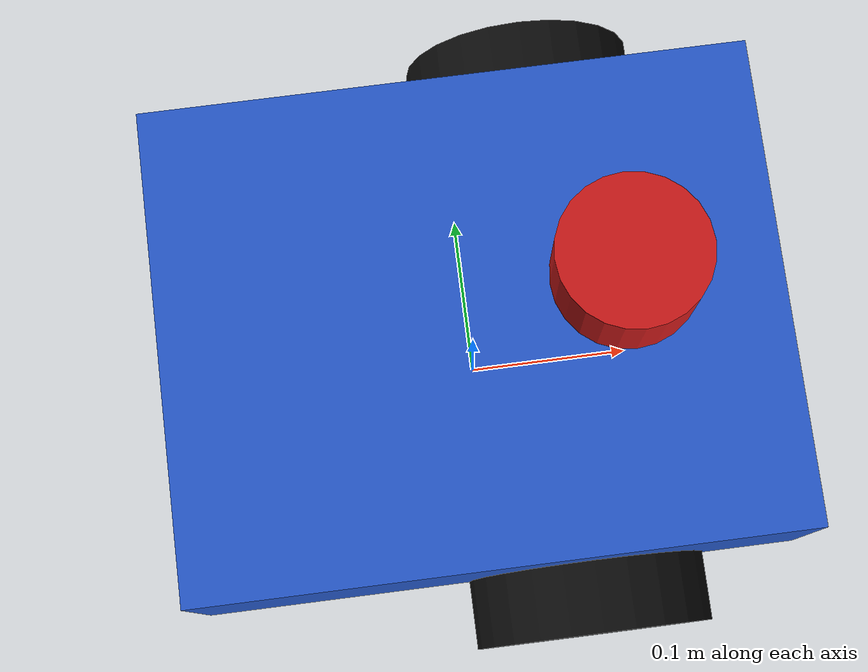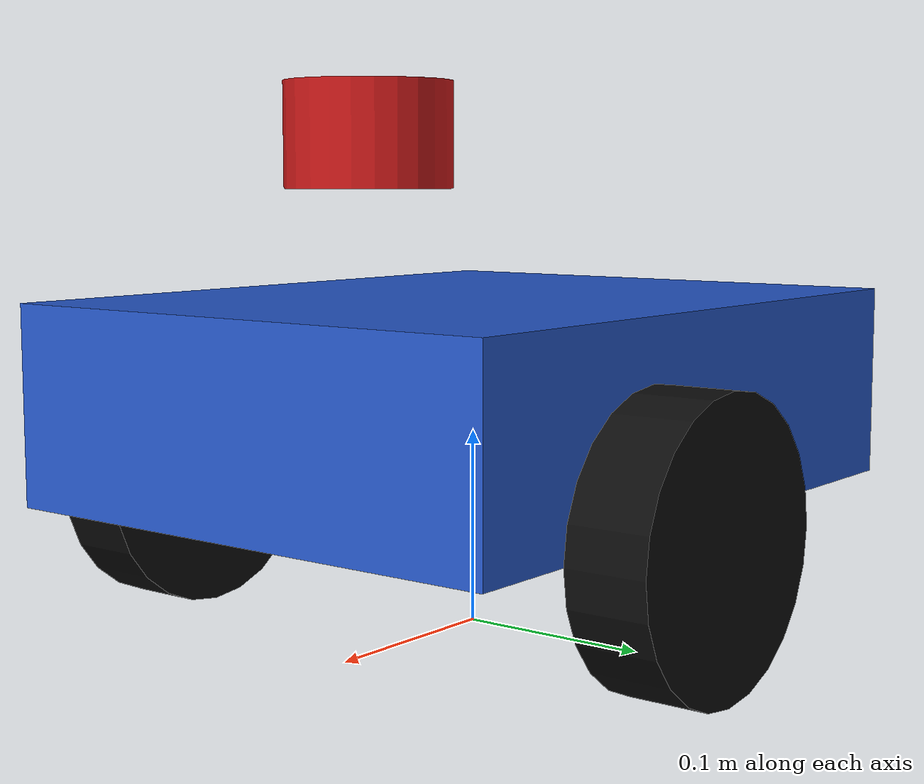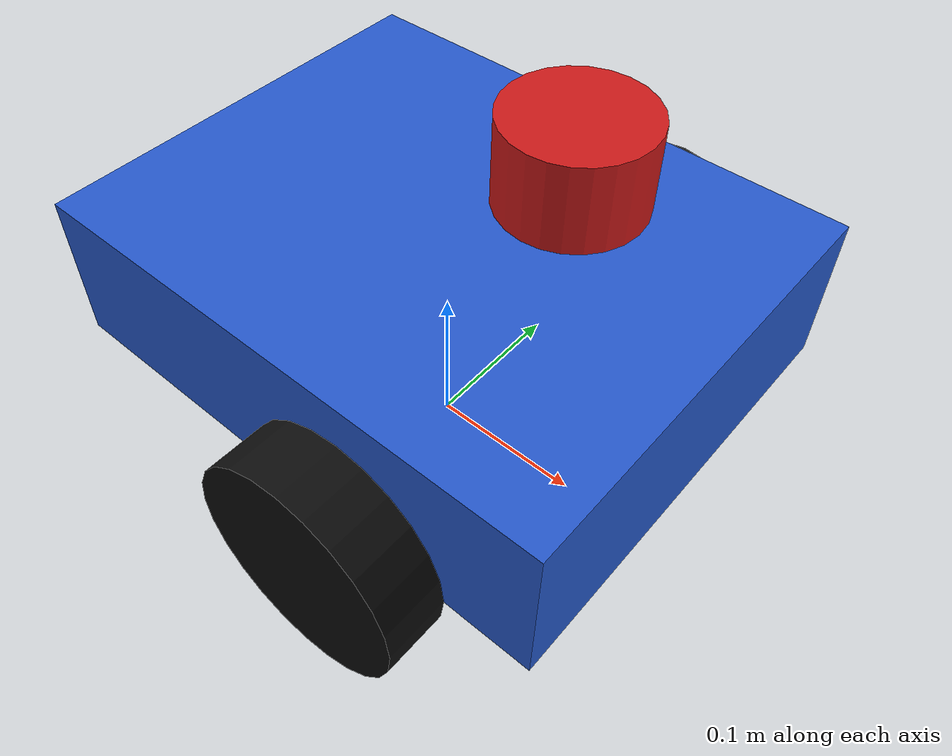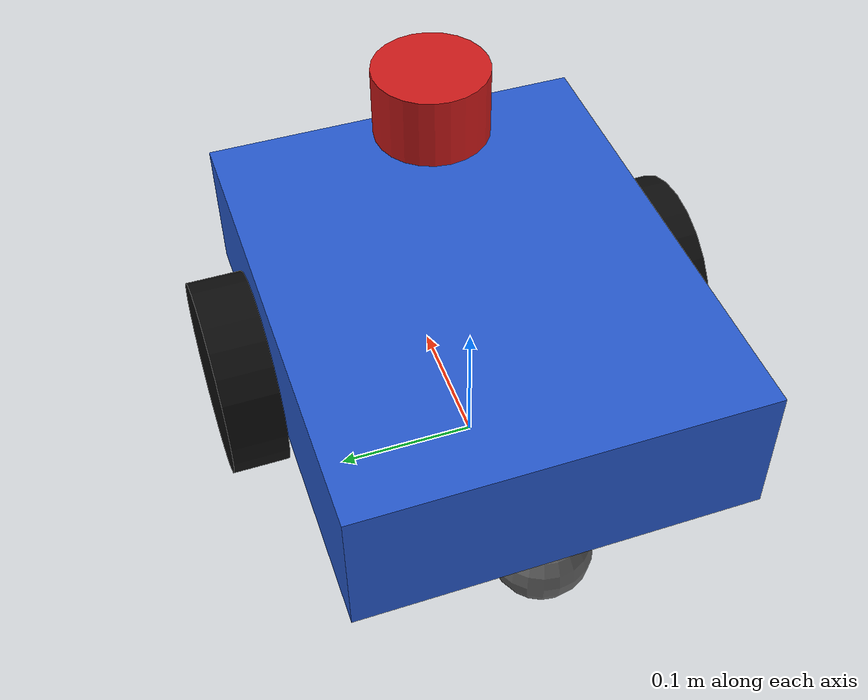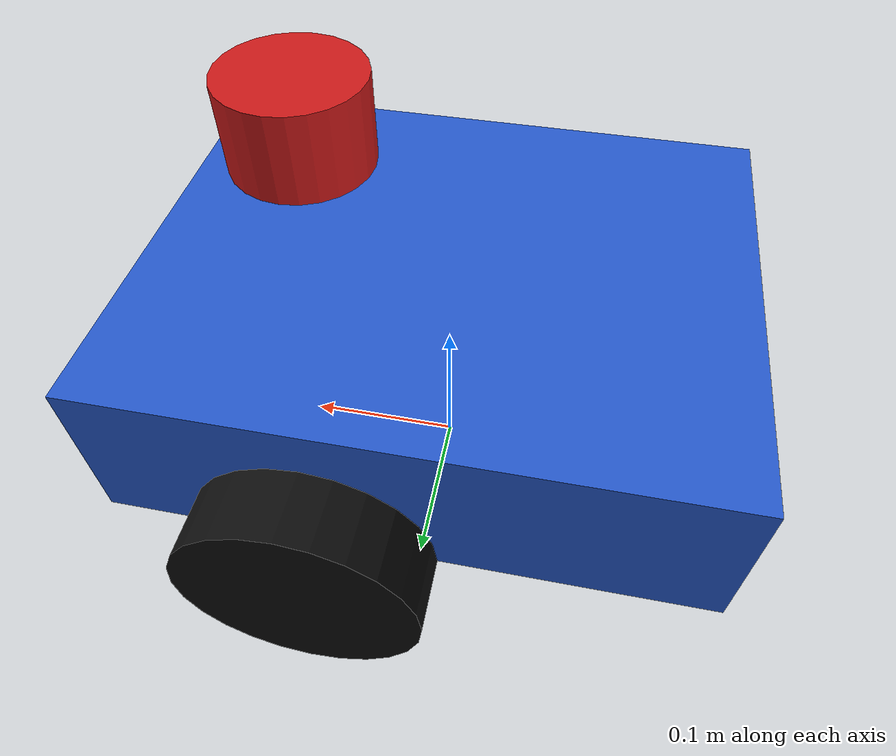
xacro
<?xml version="1.0"?>

<robot
    xmlns:xacro="http://www.ros.org/wiki/xacro"
    name="mobile_robot1">

    <!-- 기본 크기 파라미터 -->

    <xacro:property name="body_length" value="0.35"/>
    <xacro:property name="body_width"  value="0.28"/>
    <xacro:property name="body_height" value="0.10"/>

    <xacro:property name="wheel_radius" value="0.07"/>
    <xacro:property name="wheel_width"  value="0.04"/>

    <!-- 좌우 바퀴 중심 사이 거리 -->
    <xacro:property name="wheel_separation" value="0.32"/>

    <!-- 1. base_footprint -->

    <!--
        바닥 기준 좌표계

        실제 형상은 없고 TF 기준용으로 사용한다.
    -->

    <link name="base_footprint"/>

    <!-- 2. base_link -->

    <link name="base_link">

        <!-- ======== Visual ======== -->

        <visual>

            <geometry>
                <box size="
                    ${body_length}
                    ${body_width}
                    ${body_height}
                "/>
            </geometry>

            <material name="blue">
                <color rgba="0.15 0.35 0.8 1.0"/>
            </material>

        </visual>

        <!-- ======== Collision ======== -->

        <collision>

            <geometry>
                <box size="
                    ${body_length}
                    ${body_width}
                    ${body_height}
                "/>
            </geometry>

        </collision>

        <!-- ======== Inertia ======== -->

        <inertial>

            <mass value="3.0"/>

            <inertia
                ixx="0.0221"
                ixy="0.0"
                ixz="0.0"
                iyy="0.0331"
                iyz="0.0"
                izz="0.0502"/>

        </inertial>

    </link>

    <!--
        base_footprint → base_link

        바퀴 반지름이 0.07m이고
        본체 중심은 바닥에서 0.12m 위에 둔다.
    -->

    <joint
        name="base_footprint_joint"
        type="fixed">

        <parent link="base_footprint"/>
        <child link="base_link"/>

        <origin
            xyz="0 0 0.12"
            rpy="0 0 0"/>

    </joint>

    <!-- 3. Left Wheel -->

    <link name="left_wheel_link">

        <visual>

            <origin
                xyz="0 0 0"
                rpy="${pi/2} 0 0"/>

            <geometry>
                <cylinder
                    radius="${wheel_radius}"
                    length="${wheel_width}"/>
            </geometry>

            <material name="black">
                <color rgba="0.05 0.05 0.05 1.0"/>
            </material>

        </visual>

        <collision>

            <origin
                xyz="0 0 0"
                rpy="${pi/2} 0 0"/>

            <geometry>
                <cylinder
                    radius="${wheel_radius}"
                    length="${wheel_width}"/>
            </geometry>

        </collision>

        <inertial>

            <mass value="0.4"/>

            <inertia
                ixx="0.00054"
                ixy="0"
                ixz="0"
                iyy="0.00098"
                iyz="0"
                izz="0.00054"/>

        </inertial>

    </link>

    <joint
        name="left_wheel_joint"
        type="continuous">

        <parent link="base_link"/>
        <child link="left_wheel_link"/>

        <!--
            base_link의 높이가 0.12
            wheel center는 바닥에서 0.07

            따라서:
            0.07 - 0.12 = -0.05
        -->

        <origin
            xyz="0.05 0.16 -0.05"
            rpy="0 0 0"/>

        <axis xyz="0 1 0"/>

    </joint>

    <!-- 4. Right Wheel -->

    <link name="right_wheel_link">

        <visual>

            <origin
                xyz="0 0 0"
                rpy="${pi/2} 0 0"/>

            <geometry>
                <cylinder
                    radius="${wheel_radius}"
                    length="${wheel_width}"/>
            </geometry>

            <material name="black"/>

        </visual>

        <collision>

            <origin
                xyz="0 0 0"
                rpy="${pi/2} 0 0"/>

            <geometry>
                <cylinder
                    radius="${wheel_radius}"
                    length="${wheel_width}"/>
            </geometry>

        </collision>

        <inertial>

            <mass value="0.4"/>

            <inertia
                ixx="0.00054"
                ixy="0"
                ixz="0"
                iyy="0.00098"
                iyz="0"
                izz="0.00054"/>

        </inertial>

    </link>

    <joint
        name="right_wheel_joint"
        type="continuous">

        <parent link="base_link"/>
        <child link="right_wheel_link"/>

        <origin
            xyz="0.05 -0.16 -0.05"
            rpy="0 0 0"/>

        <axis xyz="0 1 0"/>

    </joint>

    <!-- 5. Caster -->

    <!--
        실제 caster를 매우 단순화해서
        마찰이 작은 구 형태로 표현한다.
    -->

    <link name="caster_link">

        <visual>

            <geometry>
                <sphere radius="0.035"/>
            </geometry>

            <material name="gray">
                <color rgba="0.4 0.4 0.4 1.0"/>
            </material>

        </visual>

        <collision>

            <geometry>
                <sphere radius="0.035"/>
            </geometry>

        </collision>

        <inertial>

            <mass value="0.15"/>

            <inertia
                ixx="0.0000735"
                ixy="0"
                ixz="0"
                iyy="0.0000735"
                iyz="0"
                izz="0.0000735"/>

        </inertial>

    </link>

    <joint
        name="caster_joint"
        type="fixed">

        <parent link="base_link"/>
        <child link="caster_link"/>

        <origin
            xyz="-0.14 0 -0.085"
            rpy="0 0 0"/>

    </joint>

    <!-- 6. LiDAR -->

    <link name="base_scan">

        <visual>

            <geometry>
                <cylinder
                    radius="0.04"
                    length="0.05"/>
            </geometry>

            <material name="red">
                <color rgba="0.8 0.1 0.1 1.0"/>
            </material>

        </visual>

        <collision>

            <geometry>
                <cylinder
                    radius="0.04"
                    length="0.05"/>
            </geometry>

        </collision>

        <inertial>

            <mass value="0.15"/>

            <inertia
                ixx="0.000091"
                ixy="0"
                ixz="0"
                iyy="0.000091"
                iyz="0"
                izz="0.00012"/>

        </inertial>

    </link>

    <joint
        name="base_scan_joint"
        type="fixed">

        <parent link="base_link"/>
        <child link="base_scan"/>

        <origin
            xyz="0.08 0 0.13"
            rpy="0 0 0"/>

    </joint>

    <!-- Gazebo Material / Friction -->

    <gazebo reference="base_link">
        <material>Gazebo/Blue</material>
    </gazebo>

    <gazebo reference="left_wheel_link">

        <material>Gazebo/Black</material>

        <mu1>1.0</mu1>
        <mu2>1.0</mu2>

    </gazebo>

    <gazebo reference="right_wheel_link">

        <material>Gazebo/Black</material>

        <mu1>1.0</mu1>
        <mu2>1.0</mu2>

    </gazebo>

    <!--
        caster는 회전 joint까지 만들지 않고
        작은 마찰값으로 쉽게 미끄러지게 한다.
    -->

    <gazebo reference="caster_link">

        <material>Gazebo/Grey</material>

        <mu1>0.01</mu1>
        <mu2>0.01</mu2>

    </gazebo>

    <!-- 7. Differential Drive Plugin -->

    <gazebo>

        <plugin
            name="diff_drive"
            filename="libgazebo_ros_diff_drive.so">

            <update_rate>50</update_rate>

            <!-- 사용되는 바퀴 joint -->

            <left_joint>
                left_wheel_joint
            </left_joint>

            <right_joint>
                right_wheel_joint
            </right_joint>

            <!-- 로봇 기구학 -->

            <wheel_separation>
                ${wheel_separation}
            </wheel_separation>

            <wheel_diameter>
                ${wheel_radius * 2.0}
            </wheel_diameter>

            <!-- 모터 제한 -->

            <max_wheel_torque>
                20.0
            </max_wheel_torque>

            <max_wheel_acceleration>
                0.5
            </max_wheel_acceleration>

            <!-- ROS Topic -->

            <command_topic>
                cmd_vel
            </command_topic>

            <odometry_topic>
                odom
            </odometry_topic>

            <!-- Odometry -->

            <publish_odom>
                true
            </publish_odom>

            <publish_odom_tf>
                true
            </publish_odom_tf>

            <publish_wheel_tf>
                true
            </publish_wheel_tf>

            <!-- TF -->

            <odometry_frame>
                odom
            </odometry_frame>

            <robot_base_frame>
                base_footprint
            </robot_base_frame>

        </plugin>

    </gazebo>

    <!-- 8. LiDAR Gazebo Plugin -->

    <gazebo reference="base_scan">

        <sensor
            name="lidar_sensor"
            type="ray">

            <always_on>true</always_on>

            <!-- Gazebo에서 laser 선 표시 -->
            <visualize>true</visualize>

            <update_rate>10</update_rate>

            <ray>

                <scan>

                    <horizontal>

                        <samples>360</samples>

                        <resolution>
                            1.0
                        </resolution>

                        <min_angle>
                            -3.14159
                        </min_angle>

                        <max_angle>
                            3.14159
                        </max_angle>

                    </horizontal>

                </scan>

                <range>

                    <min>0.12</min>

                    <max>8.0</max>

                    <resolution>
                        0.01
                    </resolution>

                </range>

                <noise>

                    <type>
                        gaussian
                    </type>

                    <mean>
                        0.0
                    </mean>

                    <stddev>
                        0.005
                    </stddev>

                </noise>

            </ray>

            <plugin
                name="laser_plugin"
                filename="libgazebo_ros_ray_sensor.so">

                <ros>

                    <remapping>
                        ~/out:=scan
                    </remapping>

                </ros>

                <output_type>
                    sensor_msgs/LaserScan
                </output_type>

                <frame_name>
                    base_scan
                </frame_name>

            </plugin>

        </sensor>

    </gazebo>

</robot>
